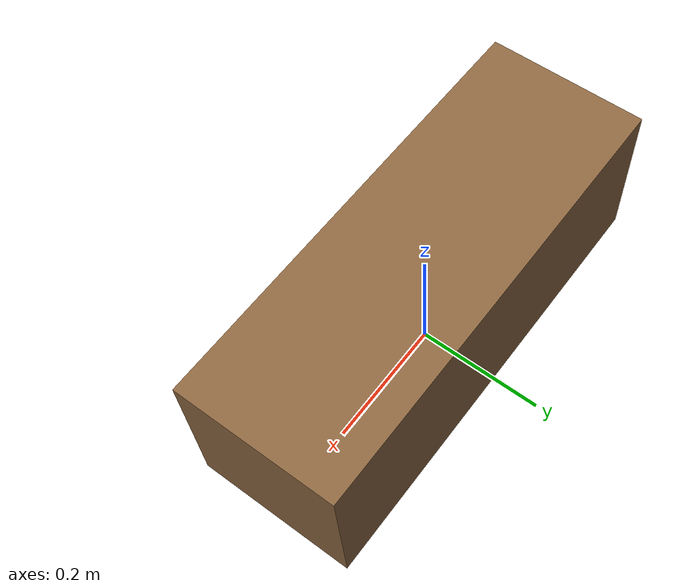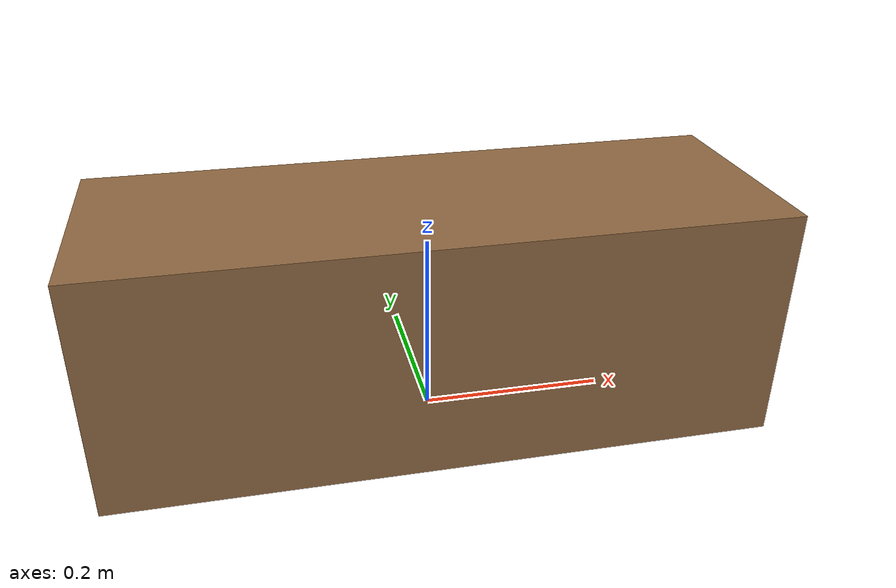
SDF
<?xml version='1.0'?>
<sdf version="1.7">
  <model name="bench_simple">
    <!-- Pose sets the model origin at ground contact (z=0). -->
    <pose>0 0 0.125 0 0 0</pose>
    <static>true</static>
    <link name="link">
      <collision name="collision">
        <geometry>
          <box>
            <size>0.70 0.25 0.25</size>
          </box>
        </geometry>
      </collision>
      <visual name="visual">
        <geometry>
          <box>
            <size>0.70 0.25 0.25</size>
          </box>
        </geometry>
        <material>
          <ambient>0.55 0.40 0.25 1</ambient>
          <diffuse>0.55 0.40 0.25 1</diffuse>
          <specular>0.02 0.02 0.02 1</specular>
          <emissive>0 0 0 1</emissive>
        </material>
      </visual>
    </link>
  </model>
</sdf>
